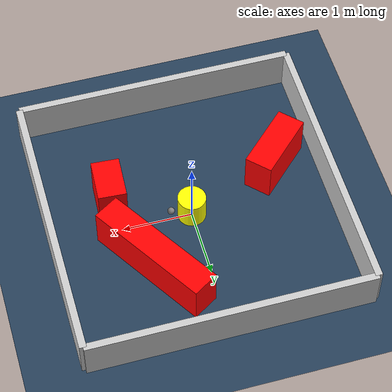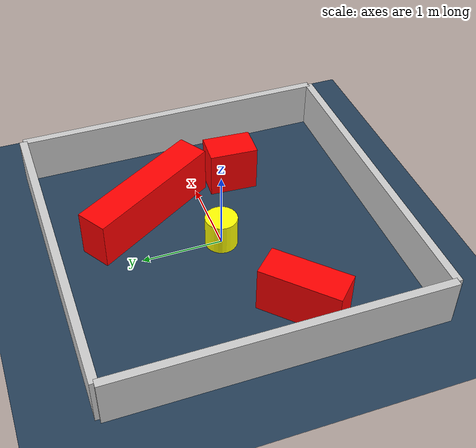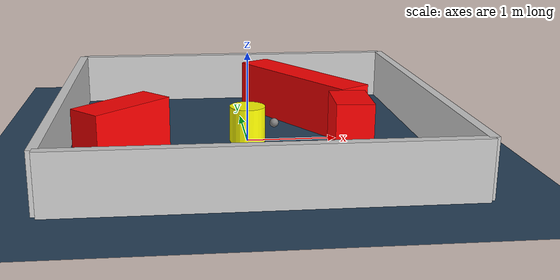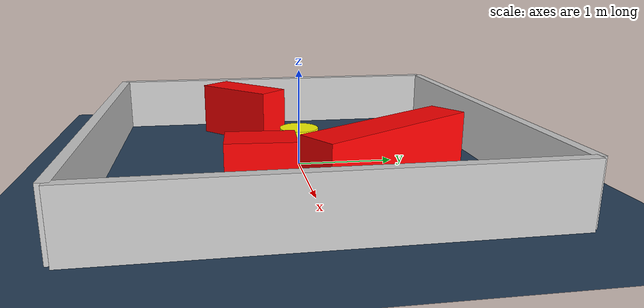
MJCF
<?xml version="1.0" ?>
<mujoco model="generated_environment">
  <option timestep="0.01" integrator="RK4" cone="elliptic"/>
  <default>
    <geom density="1"/>
  </default>
  <asset>
    <texture builtin="gradient" height="3072" rgb1="0.3 0.5 0.7" rgb2="0 0 0" type="skybox" width="512"/>
    <texture builtin="checker" height="300" mark="edge" markrgb="0.8 0.8 0.8" name="groundplane" rgb1="0.2 0.3 0.4" rgb2="0.1 0.2 0.3" type="2d" width="300"/>
    <material name="groundplane" reflectance="0.2" texrepeat="5 5" texture="groundplane" texuniform="true"/>
    <material name="robot" rgba="0.0 1.0 0.0 1"/>
  </asset>
  <worldbody>
    <light dir="0 0 -1" directional="true" pos="0 0 1.5"/>
    <geom condim="4" friction="1.0 0.005 0.001" material="groundplane" name="floor" size="0 0 0.05" type="plane"/>
    <body name="walls">
      <geom name="wall_1" condim="4" pos="-2.0 0.0 0.3" rgba="0.800000011920929 0.800000011920929 0.800000011920929 1.0" size="0.05 2.0 0.3" type="box"/>
      <geom name="wall_2" condim="4" pos="2.0 0.0 0.3" rgba="0.800000011920929 0.800000011920929 0.800000011920929 1.0" size="0.05 2.0 0.3" type="box"/>
      <geom name="wall_3" condim="4" pos="0.0 -2.0 0.3" rgba="0.800000011920929 0.800000011920929 0.800000011920929 1.0" size="2.0 0.05 0.3" type="box"/>
      <geom name="wall_4" condim="4" pos="0.0 2.0 0.3" rgba="0.800000011920929 0.800000011920929 0.800000011920929 1.0" size="2.0 0.05 0.3" type="box"/>
    </body>
    <body name="robot">
      <joint name="joint_x" type="slide" pos="0 0 0" axis="1 0 0"/>
      <joint name="joint_y" type="slide" pos="0 0 0" axis="0 1 0"/>
      <geom name="robot" type="sphere" pos="0.3 0.0 0.2" size="0.05" mass="5." friction="1.0 0.005 0.0001" condim="4" rgba="0.5 0.5 0.5 1.0"/>
      <site name="sensor_ball"/>
    </body>
    <body name="obstacle_movable_1">
      <geom name="obstacle_movable_1" condim="4" pos="0.0 0.0 0.2" euler="0 0 0.0" friction="1.0 0.005 0.001" rgba="1.0 1.0 0.0 1.0" size="0.2 0.2 0.0" type="cylinder" mass="0.1"/>
      <joint type="free"/>
    </body>
    <body name="obstacle_2_static">
      <geom name="obstacle_2_static" condim="4" pos="0.7183216104951697 0.7407379430551331 0.3" euler="0 0 301.9704974016951" friction="1.0 0.005 0.001" rgba="1 0 0 1" size="0.9208678450231156 0.2 0.3" type="box"/>
    </body>
    <body name="obstacle_3_static">
      <geom name="obstacle_3_static" condim="4" pos="1.0567396120275816 -0.48976687566213095 0.3" euler="0 0 86.54180041045643" friction="1.0 0.005 0.001" rgba="1 0 0 1" size="0.30624170271748574 0.2 0.3" type="box"/>
    </body>
    <body name="obstacle_4_static">
      <geom name="obstacle_4_static" condim="4" pos="-1.35364169203334 -0.49492109164410714 0.3" euler="0 0 224.28592198340553" friction="1.0 0.005 0.001" rgba="1 0 0 1" size="0.4908936034791826 0.2 0.3" type="box"/>
    </body>
  </worldbody>
  <actuator>
    <motor name="actuator_x" joint="joint_x" gear="1" ctrlrange="-1 1"/>
    <motor name="actuator_y" joint="joint_y" gear="1" ctrlrange="-1 1"/>
  </actuator>
</mujoco>
